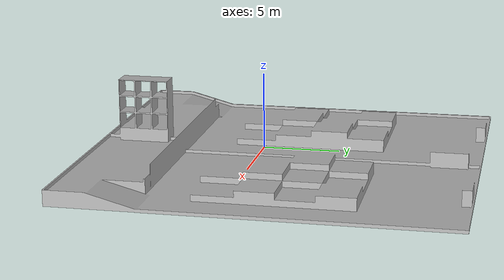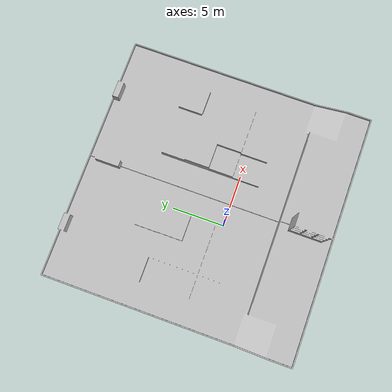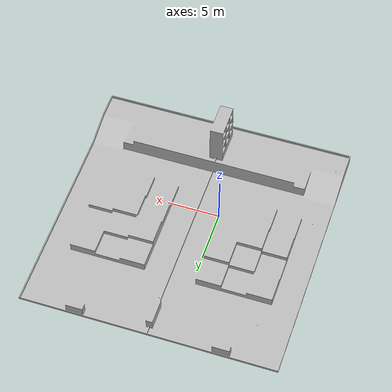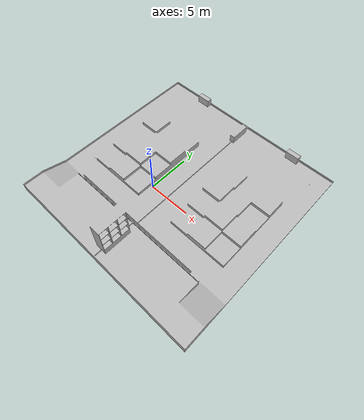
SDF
<?xml version="1.0" ?>
<sdf version="1.6">
  <world name="my_competition_world">
    <include>
      <uri>model://sun</uri>
    </include>

    <model name="competition_field">
      <static>true</static>
      <!-- 将模型的中心放在坐标原点，使其更美观 -->
      <pose>-10 -10 0 0 0 0</pose>
      <link name="link">
        <visual name="visual">
          <geometry>
            <mesh>
              <uri>../models/competition_field/meshes/world.stl</uri>
              <scale>0.002 0.002 0.002</scale>
            </mesh>
          </geometry>
        </visual>
        <collision name="collision">
          <geometry>
            <mesh>
              <uri>../models/competition_field/meshes/world.stl</uri>
              <scale>0.002 0.002 0.002</scale>
            </mesh>
          </geometry>
        </collision>
      </link>
    </model>
  </world>
</sdf>
